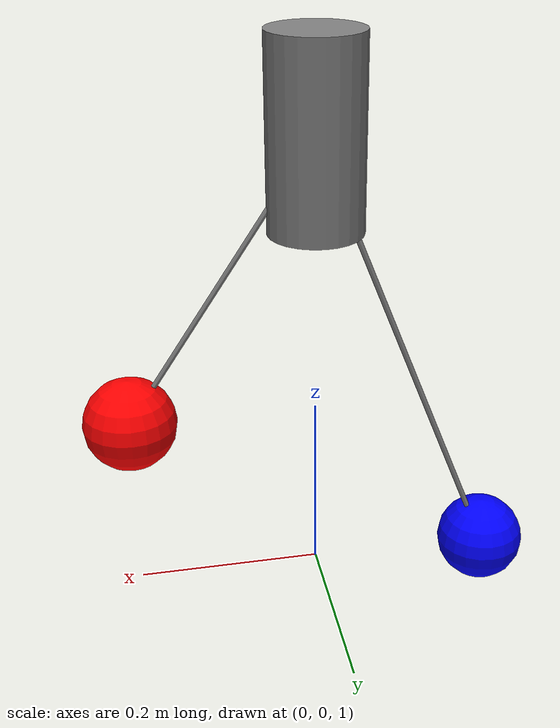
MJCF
<mujoco model="atwood_machine">
    <compiler angle="radian"/>
    <option timestep="0.01"/>

    <default>
        <joint armature="0" damping="0.1" stiffness="0"/>
        <geom condim="3" friction="0.5 0.1 0.1"/>
    </default>

    <worldbody>
        <!-- Pulley -->
        <body name="pulley" pos="0 0 1.5">
            <geom type="cylinder" size="0.05 0.1" rgba="0.5 0.5 0.5 1"/>
        </body>

        <!-- Left Mass -->
        <body name="mass1" pos="-0.2 0 1">
            <joint name="j1" type="slide" axis="0 0 1"/>
            <geom type="sphere" size="0.05" mass="0.5" rgba="0 0 1 1"/>
            <site name="mass1_site" pos="0 0 0"/>
        </body>

        <!-- Right Mass -->
        <body name="mass2" pos="0.2 0 1.2">
            <joint name="j2" type="slide" axis="0 0 1"/>
            <geom type="sphere" size="0.05" mass="1.0" rgba="1 0 0 1"/>
            <site name="mass2_site" pos="0 0 0"/>
        </body>

        <!-- Pulley site -->
        <site name="pulley_site" pos="0 0 1.5"/>
    </worldbody>

    <!-- Tendon to model the rope -->
    <tendon>
        <spatial>
            <site site="mass1_site"/>
            <site site="pulley_site"/>
            <site site="mass2_site"/>
        </spatial>
    </tendon>
</mujoco>
